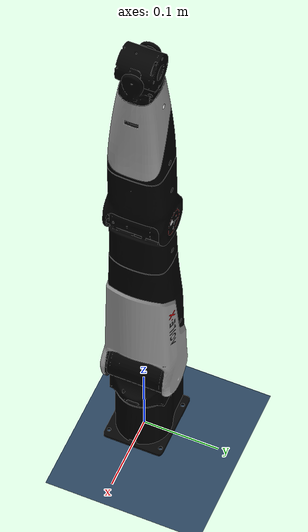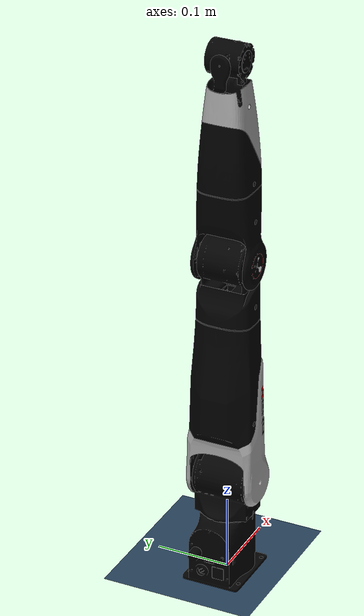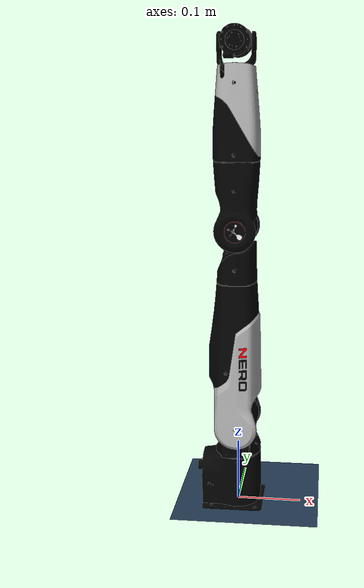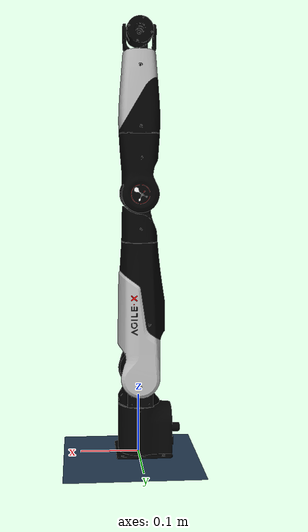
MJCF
<mujoco model="nero_view">
  <include file="nero.xml"/>
  <statistic center="0 0 0.35" extent="1.2"/>
  <visual>
    <headlight diffuse="0.6 0.6 0.6" ambient="0.3 0.3 0.3" specular="0 0 0"/>
    <global azimuth="140" elevation="-20"/>
  </visual>
  <asset>
    <texture type="skybox" builtin="gradient" rgb1="0.3 0.5 0.7" rgb2="0 0 0" width="512" height="3072"/>
    <texture type="2d" name="groundplane" builtin="checker" mark="edge"
             rgb1="0.2 0.3 0.4" rgb2="0.1 0.2 0.3" markrgb="0.8 0.8 0.8" width="300" height="300"/>
    <material name="groundplane" texture="groundplane" texuniform="true" texrepeat="5 5" reflectance="0.2"/>
  </asset>
  <worldbody>
    <light pos="0 0 1.5" dir="0 0 -1" directional="true"/>
    <geom name="floor" size="0 0 0.05" type="plane" material="groundplane"/>
  </worldbody>
</mujoco>

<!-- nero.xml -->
<mujoco model="nero">
  <compiler angle="radian" meshdir="." strippath="false"/>

  <option integrator="implicitfast" timestep="0.002"/>

  <asset>
    <mesh name="base_link" content_type="model/stl" file="../../agx_arm_urdf/nero/meshes/base_link.stl"/>
    <mesh name="link1" content_type="model/stl" file="../../agx_arm_urdf/nero/meshes/link1.stl"/>
    <mesh name="link2" content_type="model/stl" file="../../agx_arm_urdf/nero/meshes/link2.stl"/>
    <mesh name="link3" content_type="model/stl" file="../../agx_arm_urdf/nero/meshes/link3.stl"/>
    <mesh name="link4" content_type="model/stl" file="../../agx_arm_urdf/nero/meshes/link4.stl"/>
    <mesh name="link5" content_type="model/stl" file="../../agx_arm_urdf/nero/meshes/link5.stl"/>
    <mesh name="link6" content_type="model/stl" file="../../agx_arm_urdf/nero/meshes/link6.stl"/>
    <mesh name="link7" content_type="model/stl" file="../../agx_arm_urdf/nero/meshes/link7.stl"/>
    <mesh name="base_link_visual_0" content_type="model/stl" file="visual/base_link_visual_0.stl"/>
    <material name="base_link_visual_0_mat" rgba="0.008 0.008 0.008 1" specular="0.15" shininess="0.08"/>
    <mesh name="link1_visual_0" content_type="model/stl" file="visual/link1_visual_0.stl"/>
    <material name="link1_visual_0_mat" rgba="0.008 0.008 0.008 1" specular="0.15" shininess="0.08"/>
    <mesh name="link2_visual_0" content_type="model/stl" file="visual/link2_visual_0.stl"/>
    <material name="link2_visual_0_mat" rgba="0.7202 0.7202 0.7202 1" specular="0.15" shininess="0.08"/>
    <mesh name="link2_visual_1" content_type="model/stl" file="visual/link2_visual_1.stl"/>
    <material name="link2_visual_1_mat" rgba="0.008 0.008 0.008 1" specular="0.15" shininess="0.08"/>
    <mesh name="link2_visual_2" content_type="model/stl" file="visual/link2_visual_2.stl"/>
    <material name="link2_visual_2_mat" rgba="1 0 0.0014 1" specular="0.15" shininess="0.08"/>
    <mesh name="link2_visual_3" content_type="model/stl" file="visual/link2_visual_3.stl"/>
    <material name="link2_visual_3_mat" rgba="0.0057 0.0057 0.0057 1" specular="0.15" shininess="0.08"/>
    <mesh name="link3_visual_0" content_type="model/stl" file="visual/link3_visual_0.stl"/>
    <material name="link3_visual_0_mat" rgba="0.008 0.008 0.008 1" specular="0.15" shininess="0.08"/>
    <mesh name="link4_visual_0" content_type="model/stl" file="visual/link4_visual_0.stl"/>
    <material name="link4_visual_0_mat" rgba="0.008 0.008 0.008 1" specular="0.15" shininess="0.08"/>
    <mesh name="link4_visual_1" content_type="model/stl" file="visual/link4_visual_1.stl"/>
    <material name="link4_visual_1_mat" rgba="1 1 1 1" specular="0.15" shininess="0.08"/>
    <mesh name="link4_visual_2" content_type="model/stl" file="visual/link4_visual_2.stl"/>
    <material name="link4_visual_2_mat" rgba="1 0 0.0014 1" specular="0.15" shininess="0.08"/>
    <mesh name="link4_visual_3" content_type="model/stl" file="visual/link4_visual_3.stl"/>
    <material name="link4_visual_3_mat" rgba="0.3871 0.3871 0.3871 1" specular="0.15" shininess="0.08"/>
    <mesh name="link4_visual_4" content_type="model/stl" file="visual/link4_visual_4.stl"/>
    <material name="link4_visual_4_mat" rgba="0.0057 0.0057 0.0057 1" specular="0.15" shininess="0.08"/>
    <mesh name="link5_visual_0" content_type="model/stl" file="visual/link5_visual_0.stl"/>
    <material name="link5_visual_0_mat" rgba="0.7202 0.7202 0.7202 1" specular="0.15" shininess="0.08"/>
    <mesh name="link5_visual_1" content_type="model/stl" file="visual/link5_visual_1.stl"/>
    <material name="link5_visual_1_mat" rgba="0.008 0.008 0.008 1" specular="0.15" shininess="0.08"/>
    <mesh name="link6_visual_0" content_type="model/stl" file="visual/link6_visual_0.stl"/>
    <material name="link6_visual_0_mat" rgba="0.008 0.008 0.008 1" specular="0.15" shininess="0.08"/>
    <mesh name="link7_visual_0" content_type="model/stl" file="visual/link7_visual_0.stl"/>
    <material name="link7_visual_0_mat" rgba="0.008 0.008 0.008 1" specular="0.15" shininess="0.08"/>
  </asset>

  <worldbody>
    <body name="base_link">
      <inertial pos="-0.00319466 -5.46761e-05 0.0432176" quat="0.712681 0.00763931 0.0100067 0.701375" mass="1.06458" diaginertia="0.00114403 0.00102664 0.000908653"/>
      <geom type="mesh" contype="0" conaffinity="0" group="1" density="0" mesh="base_link_visual_0" material="base_link_visual_0_mat"/>
      <geom type="mesh" mesh="base_link" group="4" rgba="0 0 0 0"/>
      <body name="link1" pos="0 0 0.138">
        <inertial pos="-0.000768106 -5.71803e-05 -0.00686373" quat="0.998496 0.0243284 -0.0474034 0.0129308" mass="0.767105" diaginertia="0.000668361 0.000545022 0.000513619"/>
        <joint name="joint1" damping="1" armature="0.05" range="-2.68781 2.68781" actuatorfrcrange="-100 100"/>
        <geom type="mesh" contype="0" conaffinity="0" group="1" density="0" mesh="link1_visual_0" material="link1_visual_0_mat"/>
        <geom type="mesh" mesh="link1" group="4" rgba="0 0 0 0"/>
        <body name="link2" quat="1.89469e-08 1.89469e-08 0.707107 -0.707107">
          <inertial pos="0.000796867 -0.0789033 0.00111849" quat="0.724173 0.689546 -0.00281155 -0.00963045" mass="0.693819" diaginertia="0.00201137 0.00182229 0.000632162"/>
          <joint name="joint2" damping="1" armature="0.05" range="-1.72788 1.72788" actuatorfrcrange="-100 100"/>
          <geom type="mesh" contype="0" conaffinity="0" group="1" density="0" mesh="link2_visual_0" material="link2_visual_0_mat"/>
      <geom type="mesh" contype="0" conaffinity="0" group="1" density="0" mesh="link2_visual_1" material="link2_visual_1_mat"/>
      <geom type="mesh" contype="0" conaffinity="0" group="1" density="0" mesh="link2_visual_2" material="link2_visual_2_mat"/>
      <geom type="mesh" contype="0" conaffinity="0" group="1" density="0" mesh="link2_visual_3" material="link2_visual_3_mat"/>
          <geom type="mesh" mesh="link2" group="4" rgba="0 0 0 0"/>
          <body name="link3" pos="0 -0.31 0" quat="-1.37922e-08 1.37922e-08 -0.707107 0.707107">
            <inertial pos="0.000145134 -0.00121379 -0.0486114" quat="0.999978 -0.00572699 -0.000503892 -0.00336231" mass="0.672465" diaginertia="0.0034323 0.00338703 0.000288126"/>
            <joint name="joint3" damping="1" armature="0.05" range="-2.74017 2.74017" actuatorfrcrange="-100 100"/>
            <geom type="mesh" contype="0" conaffinity="0" group="1" density="0" mesh="link3_visual_0" material="link3_visual_0_mat"/>
            <geom type="mesh" mesh="link3" group="4" rgba="0 0 0 0"/>
            <body name="link4" quat="-1.37922e-08 1.37922e-08 -0.707107 0.707107">
              <inertial pos="-0.000313346 -0.0567519 0.000760561" quat="0.743967 0.668141 -0.00555621 -0.00837616" mass="0.484514" diaginertia="0.000503972 0.000403451 0.00023296"/>
              <joint name="joint4" damping="1" armature="0.05" range="-0.994838 2.1293" actuatorfrcrange="-100 100"/>
              <geom type="mesh" contype="0" conaffinity="0" group="1" density="0" mesh="link4_visual_0" material="link4_visual_0_mat"/>
      <geom type="mesh" contype="0" conaffinity="0" group="1" density="0" mesh="link4_visual_1" material="link4_visual_1_mat"/>
      <geom type="mesh" contype="0" conaffinity="0" group="1" density="0" mesh="link4_visual_2" material="link4_visual_2_mat"/>
      <geom type="mesh" contype="0" conaffinity="0" group="1" density="0" mesh="link4_visual_3" material="link4_visual_3_mat"/>
      <geom type="mesh" contype="0" conaffinity="0" group="1" density="0" mesh="link4_visual_4" material="link4_visual_4_mat"/>
              <geom type="mesh" mesh="link4" group="4" rgba="0 0 0 0"/>
              <body name="link5" pos="0 -0.27001 0" quat="0.5 0.5 -0.5 0.5">
                <inertial pos="0.00265591 0.00201196 -0.116209" quat="0.994383 -0.0299767 0.0135244 0.100607" mass="0.583684" diaginertia="0.000897188 0.000859677 0.000214923"/>
                <joint name="joint5" damping="1" armature="0.05" range="-2.74017 2.74017" actuatorfrcrange="-100 100"/>
                <geom type="mesh" contype="0" conaffinity="0" group="1" density="0" mesh="link5_visual_0" material="link5_visual_0_mat"/>
      <geom type="mesh" contype="0" conaffinity="0" group="1" density="0" mesh="link5_visual_1" material="link5_visual_1_mat"/>
                <geom type="mesh" mesh="link5" group="4" rgba="0 0 0 0"/>
                <body name="link6" quat="0.5 0.5 -0.5 0.5">
                  <inertial pos="9.50151e-05 0.00107831 -0.00019111" quat="0.708463 0.705104 -0.0268147 0.0137484" mass="0.314041" diaginertia="6.02857e-05 5.75589e-05 4.69904e-05"/>
                  <joint name="joint6" damping="1" armature="0.05" range="-0.715586 0.942479" actuatorfrcrange="-100 100"/>
                  <geom type="mesh" contype="0" conaffinity="0" group="1" density="0" mesh="link6_visual_0" material="link6_visual_0_mat"/>
                  <geom type="mesh" mesh="link6" group="4" rgba="0 0 0 0"/>
                  <body name="link7" pos="0 -0.0235 0" quat="0.707107 0.707107 0 0">
                    <inertial pos="-0.00014 -0.0001 -0.00275" quat="0.5 0.5 -0.5 0.5" mass="1e-06" diaginertia="2e-07 1.1e-07 1.1e-07"/>
                    <joint name="joint7" damping="1" armature="0.05" range="-1.55334 1.55334" actuatorfrcrange="-100 100"/>
                    <geom type="mesh" contype="0" conaffinity="0" group="1" density="0" mesh="link7_visual_0" material="link7_visual_0_mat"/>
                    <geom type="mesh" mesh="link7" group="4" rgba="0 0 0 0"/>
                  </body>
                </body>
              </body>
            </body>
          </body>
        </body>
      </body>
    </body>
  </worldbody>
  <contact>
    <exclude body1="base_link" body2="link1"/>
    <exclude body1="link1" body2="link2"/>
    <exclude body1="link2" body2="link3"/>
    <exclude body1="link3" body2="link4"/>
    <exclude body1="link4" body2="link5"/>
    <exclude body1="link5" body2="link6"/>
    <exclude body1="link6" body2="link7"/>
  </contact>
  <actuator>
    <!-- kp/kv are starting gains; tune after hold/vibration checks. -->
    <position name="nero_joint1_act" joint="joint1" gear="1" kp="100" kv="10" ctrllimited="true" ctrlrange="-2.68781 2.68781" forcelimited="true" forcerange="-100 100"/>
    <position name="nero_joint2_act" joint="joint2" gear="1" kp="100" kv="10" ctrllimited="true" ctrlrange="-1.72788 1.72788" forcelimited="true" forcerange="-100 100"/>
    <position name="nero_joint3_act" joint="joint3" gear="1" kp="100" kv="10" ctrllimited="true" ctrlrange="-2.74017 2.74017" forcelimited="true" forcerange="-100 100"/>
    <position name="nero_joint4_act" joint="joint4" gear="1" kp="100" kv="10" ctrllimited="true" ctrlrange="-0.994838 2.1293" forcelimited="true" forcerange="-100 100"/>
    <position name="nero_joint5_act" joint="joint5" gear="1" kp="100" kv="10" ctrllimited="true" ctrlrange="-2.74017 2.74017" forcelimited="true" forcerange="-100 100"/>
    <position name="nero_joint6_act" joint="joint6" gear="1" kp="100" kv="10" ctrllimited="true" ctrlrange="-0.715586 0.942479" forcelimited="true" forcerange="-100 100"/>
    <position name="nero_joint7_act" joint="joint7" gear="1" kp="100" kv="10" ctrllimited="true" ctrlrange="-1.55334 1.55334" forcelimited="true" forcerange="-100 100"/>
  </actuator>
</mujoco>
